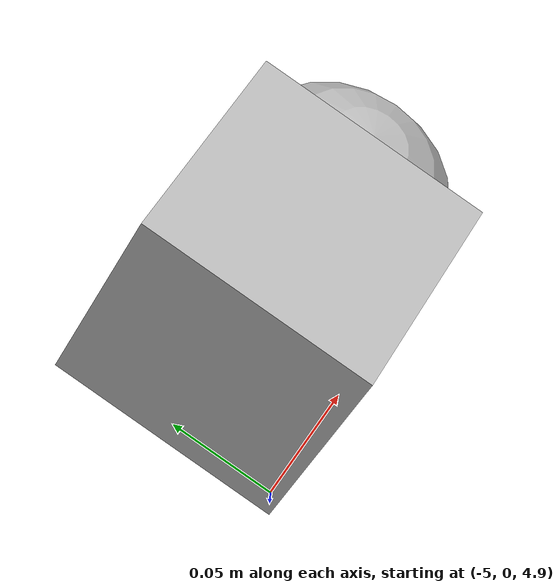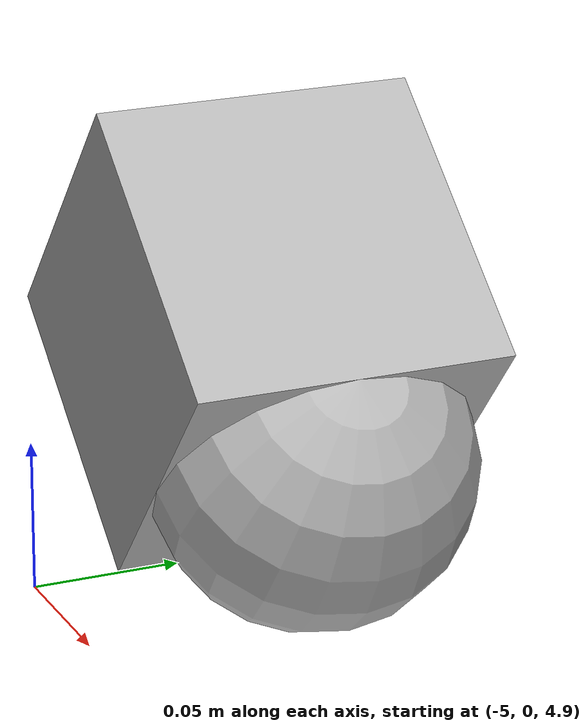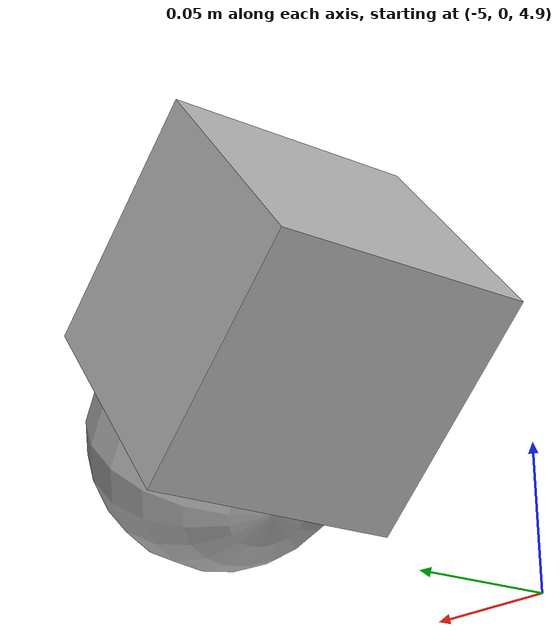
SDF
<?xml version="1.0" ?>
<sdf version="1.10">
    <model name="camera">
      <static>true</static>
      <pose>-5 0 5 0 0.7 0</pose>
      <link name="link">
        <pose>0.05 0.05 0.05 0 0 0</pose>
        <inertial>
          <mass>0.1</mass>
          <inertia>
            <ixx>0.000166667</ixx>
            <iyy>0.000166667</iyy>
            <izz>0.000166667</izz>
          </inertia>
        </inertial>
        <collision name="collision">
          <geometry>
            <box>
              <size>0.1 0.1 0.1</size>
            </box>
          </geometry>
        </collision>
        <visual name="visual">
          <geometry>
            <box>
              <size>0.1 0.1 0.1</size>
            </box>
          </geometry>
        </visual>

        <visual name="lens_visual">
          <pose>0.05 0 0 0 0 0</pose>          <!-- move to front face -->
          <geometry>
            <sphere>
              <radius>0.05</radius>
            </sphere>
          </geometry>
        </visual>

        <sensor name="camera" type="camera">
          <camera>
            <horizontal_fov>1.047</horizontal_fov>
            <image>
              <width>320</width>
              <height>240</height>
            </image>
            <clip>
              <near>0.1</near>
              <far>100</far>
            </clip>
          </camera>
          <always_on>1</always_on>
          <update_rate>5</update_rate>
          <visualize>false</visualize>
        </sensor>
      </link>
    </model>
</sdf>
